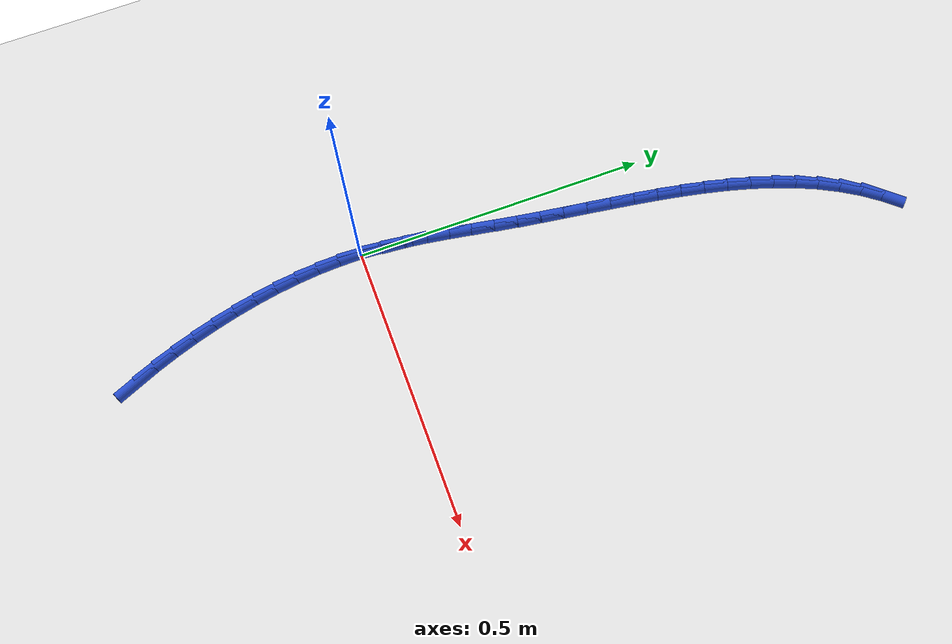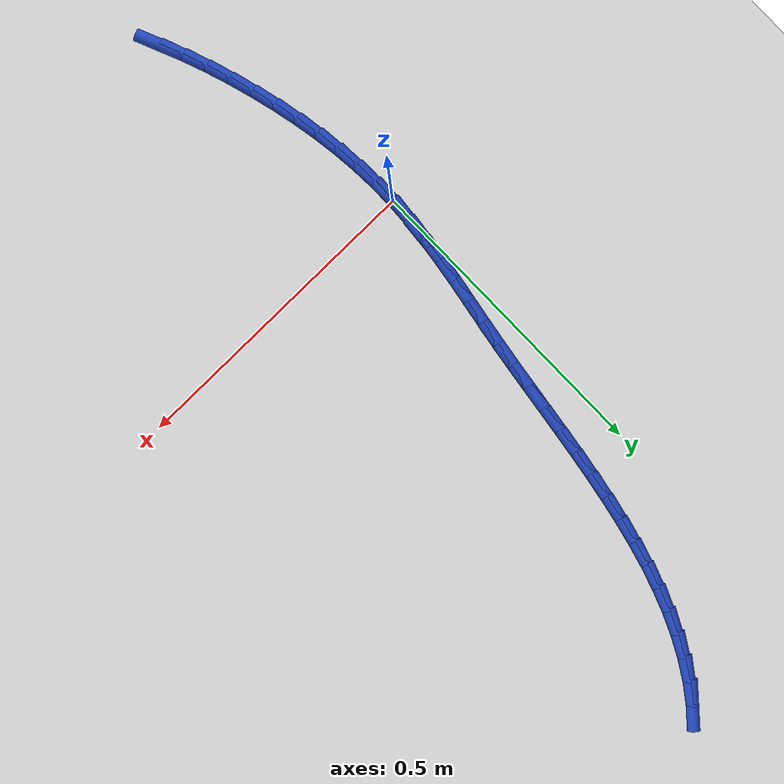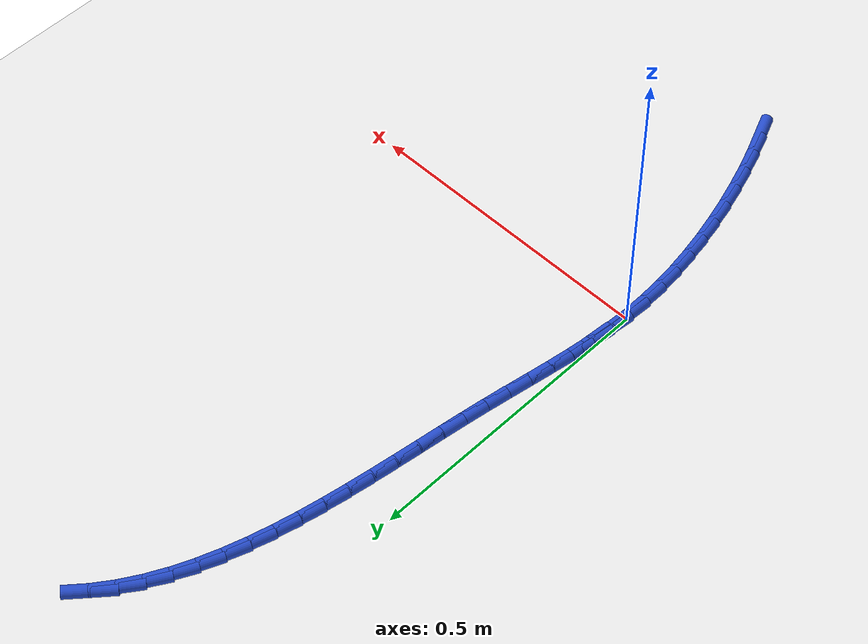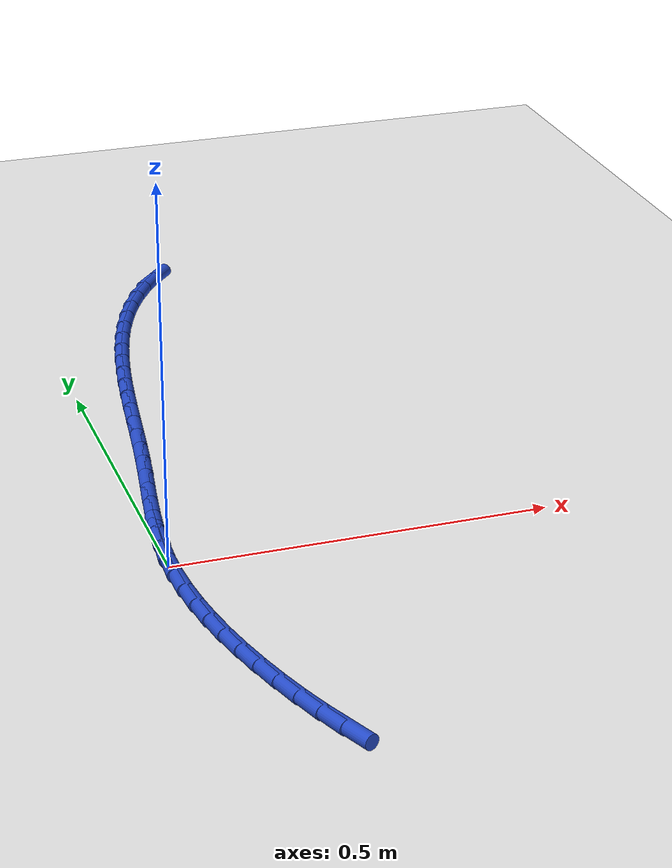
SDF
<sdf version="1.6">
 <world name="default">
  <model name="ground_plane">
   <static>1</static>
   <link name="link">
    <collision name="collision">
     <geometry><plane><normal>0 0 1</normal><size>100 100</size></plane></geometry>
     <surface><friction><ode><mu>100</mu><mu2>50</mu2></ode></friction></surface>
    </collision>
    <visual name="visual">
     <cast_shadows>0</cast_shadows>
     <geometry><plane><normal>0 0 1</normal><size>100 100</size></plane></geometry>
     <material>
      <script><uri>file://media/materials/scripts/gazebo.material</uri><name>Gazebo/WhiteGlow</name></script>
     </material>
    </visual>
   </link>
  </model>
  <model name="line">
   <link name="link_0">
    <pose>0.0 -7.632783294297951e-17 0.01 0 1.57 1.5173744444518704</pose>
    <collision name="collision">
     <geometry><cylinder><radius>0.01</radius><length>0.08</length></cylinder></geometry>
    </collision>
    <visual name="visual">
     <material>
      <script><name>Gazebo/Blue</name><uri>file://media/materials/scripts/gazebo.material</uri></script>
     </material>
     <geometry><cylinder><radius>0.01</radius><length>0.08</length></cylinder></geometry>
    </visual>
   </link>
   <link name="link_1">
    <pose>0.002029088374936336 0.03794620572292945 0.01 0 1.57 1.473055200181778</pose>
    <collision name="collision">
     <geometry><cylinder><radius>0.01</radius><length>0.08</length></cylinder></geometry>
    </collision>
    <visual name="visual">
     <material>
      <script><name>Gazebo/Blue</name><uri>file://media/materials/scripts/gazebo.material</uri></script>
     </material>
     <geometry><cylinder><radius>0.01</radius><length>0.08</length></cylinder></geometry>
    </visual>
   </link>
   <link name="link_2">
    <pose>0.005744953741146167 0.07584248328195795 0.01 0 1.57 1.4388416482292508</pose>
    <collision name="collision">
     <geometry><cylinder><radius>0.01</radius><length>0.08</length></cylinder></geometry>
    </collision>
    <visual name="visual">
     <material>
      <script><name>Gazebo/Blue</name><uri>file://media/materials/scripts/gazebo.material</uri></script>
     </material>
     <geometry><cylinder><radius>0.01</radius><length>0.08</length></cylinder></geometry>
    </visual>
   </link>
   <link name="link_3">
    <pose>0.010782486546239103 0.11379688520892949 0.01 0 1.57 1.4148330465332677</pose>
    <collision name="collision">
     <geometry><cylinder><radius>0.01</radius><length>0.08</length></cylinder></geometry>
    </collision>
    <visual name="visual">
     <material>
      <script><name>Gazebo/Blue</name><uri>file://media/materials/scripts/gazebo.material</uri></script>
     </material>
     <geometry><cylinder><radius>0.01</radius><length>0.08</length></cylinder></geometry>
    </visual>
   </link>
   <link name="link_4">
    <pose>0.01677657723782473 0.15191746403568815 0.01 0 1.57 1.4009276794443999</pose>
    <collision name="collision">
     <geometry><cylinder><radius>0.01</radius><length>0.08</length></cylinder></geometry>
    </collision>
    <visual name="visual">
     <material>
      <script><name>Gazebo/Blue</name><uri>file://media/materials/scripts/gazebo.material</uri></script>
     </material>
     <geometry><cylinder><radius>0.01</radius><length>0.08</length></cylinder></geometry>
    </visual>
   </link>
   <link name="link_5">
    <pose>0.023362116263512634 0.19031227229407793 0.01 0 1.57 1.3969029857546884</pose>
    <collision name="collision">
     <geometry><cylinder><radius>0.01</radius><length>0.08</length></cylinder></geometry>
    </collision>
    <visual name="visual">
     <material>
      <script><name>Gazebo/Blue</name><uri>file://media/materials/scripts/gazebo.material</uri></script>
     </material>
     <geometry><cylinder><radius>0.01</radius><length>0.08</length></cylinder></geometry>
    </visual>
   </link>
   <link name="link_6">
    <pose>0.030173994070912438 0.22908936251594303 0.01 0 1.57 1.4024644631420349</pose>
    <collision name="collision">
     <geometry><cylinder><radius>0.01</radius><length>0.08</length></cylinder></geometry>
    </collision>
    <visual name="visual">
     <material>
      <script><name>Gazebo/Blue</name><uri>file://media/materials/scripts/gazebo.material</uri></script>
     </material>
     <geometry><cylinder><radius>0.01</radius><length>0.08</length></cylinder></geometry>
    </visual>
   </link>
   <link name="link_7">
    <pose>0.03684710110763371 0.26835678723312734 0.01 0 1.57 1.4150594093517095</pose>
    <collision name="collision">
     <geometry><cylinder><radius>0.01</radius><length>0.08</length></cylinder></geometry>
    </collision>
    <visual name="visual">
     <material>
      <script><name>Gazebo/Blue</name><uri>file://media/materials/scripts/gazebo.material</uri></script>
     </material>
     <geometry><cylinder><radius>0.01</radius><length>0.08</length></cylinder></geometry>
    </visual>
   </link>
   <link name="link_8">
    <pose>0.04310015686612746 0.30818305375736876 0.01 0 1.57 1.4247196766114751</pose>
    <collision name="collision">
     <geometry><cylinder><radius>0.01</radius><length>0.08</length></cylinder></geometry>
    </collision>
    <visual name="visual">
     <material>
      <script><name>Gazebo/Blue</name><uri>file://media/materials/scripts/gazebo.material</uri></script>
     </material>
     <geometry><cylinder><radius>0.01</radius><length>0.08</length></cylinder></geometry>
    </visual>
   </link>
   <link name="link_9">
    <pose>0.04902591946348311 0.34846022172922536 0.01 0 1.57 1.4289074277176792</pose>
    <collision name="collision">
     <geometry><cylinder><radius>0.01</radius><length>0.08</length></cylinder></geometry>
    </collision>
    <visual name="visual">
     <material>
      <script><name>Gazebo/Blue</name><uri>file://media/materials/scripts/gazebo.material</uri></script>
     </material>
     <geometry><cylinder><radius>0.01</radius><length>0.08</length></cylinder></geometry>
    </visual>
   </link>
   <link name="link_10">
    <pose>0.05482142970664274 0.3890311568382645 0.01 0 1.57 1.4277694946308872</pose>
    <collision name="collision">
     <geometry><cylinder><radius>0.01</radius><length>0.08</length></cylinder></geometry>
    </collision>
    <visual name="visual">
     <material>
      <script><name>Gazebo/Blue</name><uri>file://media/materials/scripts/gazebo.material</uri></script>
     </material>
     <geometry><cylinder><radius>0.01</radius><length>0.08</length></cylinder></geometry>
    </visual>
   </link>
   <link name="link_11">
    <pose>0.06068373292136278 0.4297387226423643 0.01 0 1.57 1.4213515911380894</pose>
    <collision name="collision">
     <geometry><cylinder><radius>0.01</radius><length>0.08</length></cylinder></geometry>
    </collision>
    <visual name="visual">
     <material>
      <script><name>Gazebo/Blue</name><uri>file://media/materials/scripts/gazebo.material</uri></script>
     </material>
     <geometry><cylinder><radius>0.01</radius><length>0.08</length></cylinder></geometry>
    </visual>
   </link>
   <link name="link_12">
    <pose>0.06680987443339961 0.4704257826994027 0.01 0 1.57 1.4096023358931709</pose>
    <collision name="collision">
     <geometry><cylinder><radius>0.01</radius><length>0.08</length></cylinder></geometry>
    </collision>
    <visual name="visual">
     <material>
      <script><name>Gazebo/Blue</name><uri>file://media/materials/scripts/gazebo.material</uri></script>
     </material>
     <geometry><cylinder><radius>0.01</radius><length>0.08</length></cylinder></geometry>
    </visual>
   </link>
   <link name="link_13">
    <pose>0.07339689956850962 0.5109352005672576 0.01 0 1.57 1.3923774619848166</pose>
    <collision name="collision">
     <geometry><cylinder><radius>0.01</radius><length>0.08</length></cylinder></geometry>
    </collision>
    <visual name="visual">
     <material>
      <script><name>Gazebo/Blue</name><uri>file://media/materials/scripts/gazebo.material</uri></script>
     </material>
     <geometry><cylinder><radius>0.01</radius><length>0.08</length></cylinder></geometry>
    </visual>
   </link>
   <link name="link_14">
    <pose>0.0806418536524492 0.5511098398038071 0.01 0 1.57 1.3694450295526541</pose>
    <collision name="collision">
     <geometry><cylinder><radius>0.01</radius><length>0.08</length></cylinder></geometry>
    </collision>
    <visual name="visual">
     <material>
      <script><name>Gazebo/Blue</name><uri>file://media/materials/scripts/gazebo.material</uri></script>
     </material>
     <geometry><cylinder><radius>0.01</radius><length>0.08</length></cylinder></geometry>
    </visual>
   </link>
   <link name="link_15">
    <pose>0.08874178201097477 0.5907925639669293 0.01 0 1.57 1.340493421312759</pose>
    <collision name="collision">
     <geometry><cylinder><radius>0.01</radius><length>0.08</length></cylinder></geometry>
    </collision>
    <visual name="visual">
     <material>
      <script><name>Gazebo/Blue</name><uri>file://media/materials/scripts/gazebo.material</uri></script>
     </material>
     <geometry><cylinder><radius>0.01</radius><length>0.08</length></cylinder></geometry>
    </visual>
   </link>
   <link name="link_16">
    <pose>0.09789372996984268 0.6298262366145019 0.01 0 1.57 1.305144917619309</pose>
    <collision name="collision">
     <geometry><cylinder><radius>0.01</radius><length>0.08</length></cylinder></geometry>
    </collision>
    <visual name="visual">
     <material>
      <script><name>Gazebo/Blue</name><uri>file://media/materials/scripts/gazebo.material</uri></script>
     </material>
     <geometry><cylinder><radius>0.01</radius><length>0.08</length></cylinder></geometry>
    </visual>
   </link>
   <link name="link_17">
    <pose>0.10829474285480936 0.6680537213044031 0.01 0 1.57 1.2629788435202836</pose>
    <collision name="collision">
     <geometry><cylinder><radius>0.01</radius><length>0.08</length></cylinder></geometry>
    </collision>
    <visual name="visual">
     <material>
      <script><name>Gazebo/Blue</name><uri>file://media/materials/scripts/gazebo.material</uri></script>
     </material>
     <geometry><cylinder><radius>0.01</radius><length>0.08</length></cylinder></geometry>
    </visual>
   </link>
   <link name="link_18">
    <pose>0.12014186599163118 0.7053178815945107 0.01 0 1.57 1.213569457138185</pose>
    <collision name="collision">
     <geometry><cylinder><radius>0.01</radius><length>0.08</length></cylinder></geometry>
    </collision>
    <visual name="visual">
     <material>
      <script><name>Gazebo/Blue</name><uri>file://media/materials/scripts/gazebo.material</uri></script>
     </material>
     <geometry><cylinder><radius>0.01</radius><length>0.08</length></cylinder></geometry>
    </visual>
   </link>
   <link name="link_19">
    <pose>0.1336321447060645 0.7414615810427028 0.01 0 1.57 1.1565443175918892</pose>
    <collision name="collision">
     <geometry><cylinder><radius>0.01</radius><length>0.08</length></cylinder></geometry>
    </collision>
    <visual name="visual">
     <material>
      <script><name>Gazebo/Blue</name><uri>file://media/materials/scripts/gazebo.material</uri></script>
     </material>
     <geometry><cylinder><radius>0.01</radius><length>0.08</length></cylinder></geometry>
    </visual>
   </link>
   <link name="link_20">
    <pose>0.14896262432386578 0.7763276832068573 0.01 0 1.57 1.0916676313626663</pose>
    <collision name="collision">
     <geometry><cylinder><radius>0.01</radius><length>0.08</length></cylinder></geometry>
    </collision>
    <visual name="visual">
     <material>
      <script><name>Gazebo/Blue</name><uri>file://media/materials/scripts/gazebo.material</uri></script>
     </material>
     <geometry><cylinder><radius>0.01</radius><length>0.08</length></cylinder></geometry>
    </visual>
   </link>
   <link name="link_21">
    <pose>0.16633035017079137 0.8097590516448523 0.01 0 1.57 1.0189481878904165</pose>
    <collision name="collision">
     <geometry><cylinder><radius>0.01</radius><length>0.08</length></cylinder></geometry>
    </collision>
    <visual name="visual">
     <material>
      <script><name>Gazebo/Blue</name><uri>file://media/materials/scripts/gazebo.material</uri></script>
     </material>
     <geometry><cylinder><radius>0.01</radius><length>0.08</length></cylinder></geometry>
    </visual>
   </link>
   <link name="link_22">
    <pose>0.18593236757259768 0.8415985499145657 0.01 0 1.57 0.9387611671702188</pose>
    <collision name="collision">
     <geometry><cylinder><radius>0.01</radius><length>0.08</length></cylinder></geometry>
    </collision>
    <visual name="visual">
     <material>
      <script><name>Gazebo/Blue</name><uri>file://media/materials/scripts/gazebo.material</uri></script>
     </material>
     <geometry><cylinder><radius>0.01</radius><length>0.08</length></cylinder></geometry>
    </visual>
   </link>
   <link name="link_23">
    <pose>0.20796572185504109 0.8716890415738756 0.01 0 1.57 0.8519576569823705</pose>
    <collision name="collision">
     <geometry><cylinder><radius>0.01</radius><length>0.08</length></cylinder></geometry>
    </collision>
    <visual name="visual">
     <material>
      <script><name>Gazebo/Blue</name><uri>file://media/materials/scripts/gazebo.material</uri></script>
     </material>
     <geometry><cylinder><radius>0.01</radius><length>0.08</length></cylinder></geometry>
    </visual>
   </link>
   <link name="link_219">
    <pose>0.08993183924191052 -0.41840852836124526 0.01 0 1.57 -1.1712834323850623</pose>
    <collision name="collision">
     <geometry><cylinder><radius>0.01</radius><length>0.08</length></cylinder></geometry>
    </collision>
    <visual name="visual">
     <material>
      <script><name>Gazebo/Blue</name><uri>file://media/materials/scripts/gazebo.material</uri></script>
     </material>
     <geometry><cylinder><radius>0.01</radius><length>0.08</length></cylinder></geometry>
    </visual>
   </link>
   <link name="link_220">
    <pose>0.07461951581994644 -0.3821422361094519 0.01 0 1.57 -1.2127140846727313</pose>
    <collision name="collision">
     <geometry><cylinder><radius>0.01</radius><length>0.08</length></cylinder></geometry>
    </collision>
    <visual name="visual">
     <material>
      <script><name>Gazebo/Blue</name><uri>file://media/materials/scripts/gazebo.material</uri></script>
     </material>
     <geometry><cylinder><radius>0.01</radius><length>0.08</length></cylinder></geometry>
    </visual>
   </link>
   <link name="link_221">
    <pose>0.06065328849715628 -0.34482083354815607 0.01 0 1.57 -1.249998824180052</pose>
    <collision name="collision">
     <geometry><cylinder><radius>0.01</radius><length>0.08</length></cylinder></geometry>
    </collision>
    <visual name="visual">
     <material>
      <script><name>Gazebo/Blue</name><uri>file://media/materials/scripts/gazebo.material</uri></script>
     </material>
     <geometry><cylinder><radius>0.01</radius><length>0.08</length></cylinder></geometry>
    </visual>
   </link>
   <link name="link_222">
    <pose>0.04801672183724273 -0.30679035518397363 0.01 0 1.57 -1.283998837816913</pose>
    <collision name="collision">
     <geometry><cylinder><radius>0.01</radius><length>0.08</length></cylinder></geometry>
    </collision>
    <visual name="visual">
     <material>
      <script><name>Gazebo/Blue</name><uri>file://media/materials/scripts/gazebo.material</uri></script>
     </material>
     <geometry><cylinder><radius>0.01</radius><length>0.08</length></cylinder></geometry>
    </visual>
   </link>
   <link name="link_223">
    <pose>0.03669338139796117 -0.2683968329562581 0.01 0 1.57 -1.3163925819575228</pose>
    <collision name="collision">
     <geometry><cylinder><radius>0.01</radius><length>0.08</length></cylinder></geometry>
    </collision>
    <visual name="visual">
     <material>
      <script><name>Gazebo/Blue</name><uri>file://media/materials/scripts/gazebo.material</uri></script>
     </material>
     <geometry><cylinder><radius>0.01</radius><length>0.08</length></cylinder></geometry>
    </visual>
   </link>
   <link name="link_224">
    <pose>0.026689772938509233 -0.22992705296343738 0.01 0 1.57 -1.3509929371229092</pose>
    <collision name="collision">
     <geometry><cylinder><radius>0.01</radius><length>0.08</length></cylinder></geometry>
    </collision>
    <visual name="visual">
     <material>
      <script><name>Gazebo/Blue</name><uri>file://media/materials/scripts/gazebo.material</uri></script>
     </material>
     <geometry><cylinder><radius>0.01</radius><length>0.08</length></cylinder></geometry>
    </visual>
   </link>
   <link name="link_225">
    <pose>0.018094683576650478 -0.19145529975753817 0.01 0 1.57 -1.388703791997515</pose>
    <collision name="collision">
     <geometry><cylinder><radius>0.01</radius><length>0.08</length></cylinder></geometry>
    </collision>
    <visual name="visual">
     <material>
      <script><name>Gazebo/Blue</name><uri>file://media/materials/scripts/gazebo.material</uri></script>
     </material>
     <geometry><cylinder><radius>0.01</radius><length>0.08</length></cylinder></geometry>
    </visual>
   </link>
   <link name="link_226">
    <pose>0.011015341220063334 -0.15300823232336427 0.01 0 1.57 -1.429632792073938</pose>
    <collision name="collision">
     <geometry><cylinder><radius>0.01</radius><length>0.08</length></cylinder></geometry>
    </collision>
    <visual name="visual">
     <material>
      <script><name>Gazebo/Blue</name><uri>file://media/materials/scripts/gazebo.material</uri></script>
     </material>
     <geometry><cylinder><radius>0.01</radius><length>0.08</length></cylinder></geometry>
    </visual>
   </link>
   <link name="link_227">
    <pose>0.005558973776426262 -0.1146125096457197 0.01 0 1.57 -1.4738572192213932</pose>
    <collision name="collision">
     <geometry><cylinder><radius>0.01</radius><length>0.08</length></cylinder></geometry>
    </collision>
    <visual name="visual">
     <material>
      <script><name>Gazebo/Blue</name><uri>file://media/materials/scripts/gazebo.material</uri></script>
     </material>
     <geometry><cylinder><radius>0.01</radius><length>0.08</length></cylinder></geometry>
    </visual>
   </link>
   <link name="link_228">
    <pose>0.0018328091534176353 -0.0762947907094074 0.01 0 1.57 -1.521410114522013</pose>
    <collision name="collision">
     <geometry><cylinder><radius>0.01</radius><length>0.08</length></cylinder></geometry>
    </collision>
    <visual name="visual">
     <material>
      <script><name>Gazebo/Blue</name><uri>file://media/materials/scripts/gazebo.material</uri></script>
     </material>
     <geometry><cylinder><radius>0.01</radius><length>0.08</length></cylinder></geometry>
    </visual>
   </link>
   <link name="link_229">
    <pose>-5.5924741283895976e-05 -0.03808173449923326 0.01 0 1.57 1.5693277828376304</pose>
    <collision name="collision">
     <geometry><cylinder><radius>0.01</radius><length>0.08</length></cylinder></geometry>
    </collision>
    <visual name="visual">
     <material>
      <script><name>Gazebo/Blue</name><uri>file://media/materials/scripts/gazebo.material</uri></script>
     </material>
     <geometry><cylinder><radius>0.01</radius><length>0.08</length></cylinder></geometry>
    </visual>
   </link>
   <link name="link_230">
    <pose>5.204170427930421e-18 -2.5673907444456745e-16 0.01 0 1.57 1.5152732144877266</pose>
    <collision name="collision">
     <geometry><cylinder><radius>0.01</radius><length>0.08</length></cylinder></geometry>
    </collision>
    <visual name="visual">
     <material>
      <script><name>Gazebo/Blue</name><uri>file://media/materials/scripts/gazebo.material</uri></script>
     </material>
     <geometry><cylinder><radius>0.01</radius><length>0.08</length></cylinder></geometry>
    </visual>
   </link>
   <link name="link_231">
    <pose>0.0021078112849477852 0.03792375380348769 0.01 0 1.57 1.4582106958137677</pose>
    <collision name="collision">
     <geometry><cylinder><radius>0.01</radius><length>0.08</length></cylinder></geometry>
    </collision>
    <visual name="visual">
     <material>
      <script><name>Gazebo/Blue</name><uri>file://media/materials/scripts/gazebo.material</uri></script>
     </material>
     <geometry><cylinder><radius>0.01</radius><length>0.08</length></cylinder></geometry>
    </visual>
   </link>
   <link name="link_232">
    <pose>0.0063747370212379004 0.07566286792642662 0.01 0 1.57 1.4867429768850629</pose>
    <collision name="collision">
     <geometry><cylinder><radius>0.01</radius><length>0.08</length></cylinder></geometry>
    </collision>
    <visual name="visual">
     <material>
      <script><name>Gazebo/Blue</name><uri>file://media/materials/scripts/gazebo.material</uri></script>
     </material>
     <geometry><cylinder><radius>0.01</radius><length>0.08</length></cylinder></geometry>
    </visual>
   </link>
  </model>
 </world>
</sdf>
